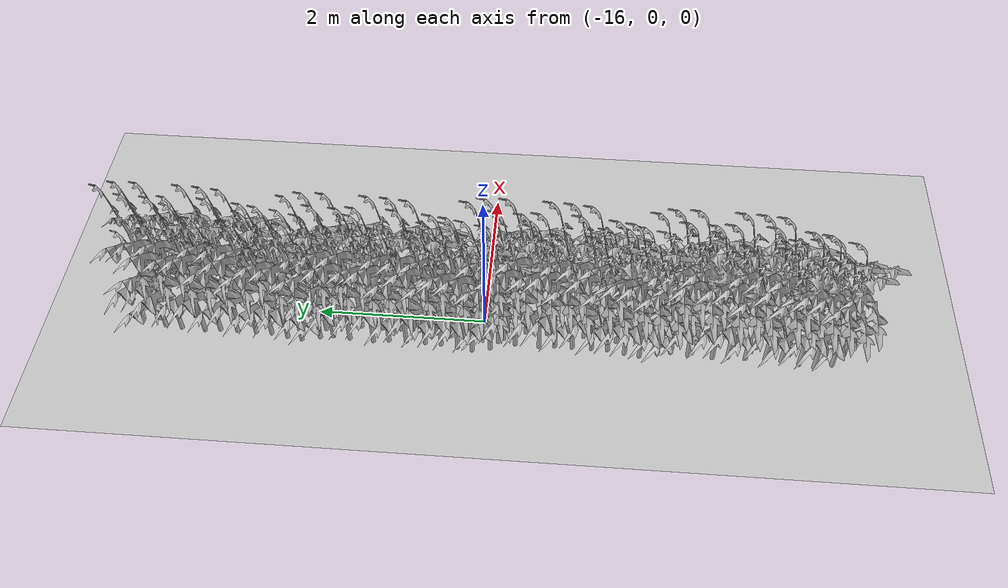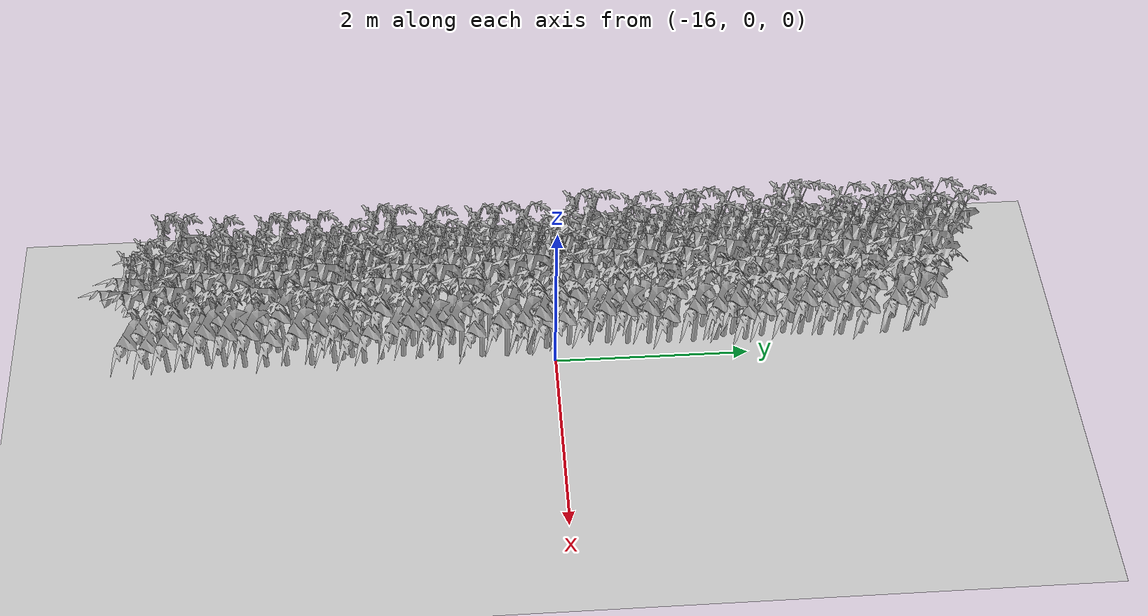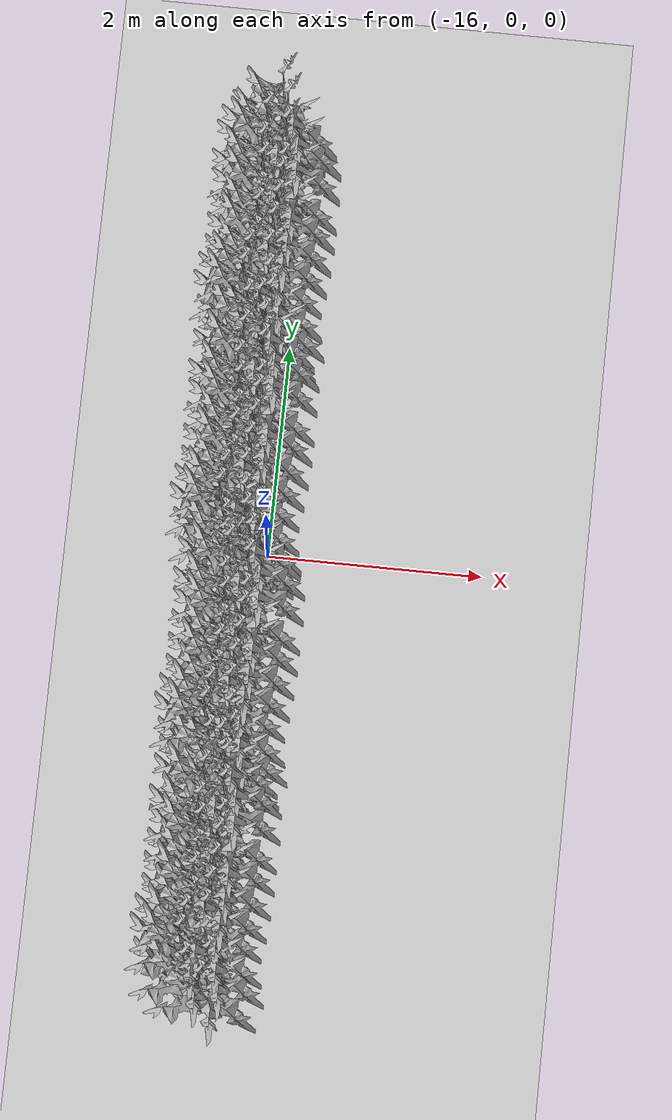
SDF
<sdf version="1.6">
 <world name="default">
  <model name="ground_plane">
   <static>1</static>
   <link name="link">
    <collision name="collision">
     <geometry><plane><normal>0 0 1</normal><size>100 100</size></plane></geometry>
     <surface>
      <contact><collide_bitmask>65535</collide_bitmask></contact>
      <friction><ode><mu>100</mu><mu2>50</mu2></ode></friction>
     </surface>
    </collision>
    <visual name="visual">
     <cast_shadows>0</cast_shadows>
     <geometry><plane><normal>0 0 1</normal><size>100 100</size></plane></geometry>
     <material>
      <script><uri>file://media/materials/scripts/gazebo.material</uri><name>Gazebo/Grey</name></script>
     </material>
    </visual>
   </link>
  </model>
  <model name="MIddle_Plant_3_0">
   <model name="MIddle_Plant_1">
    <model name="tomato_plant_big">
     <static>1</static>
     <link name="link">
      <collision name="collision">
       <pose>0 0 0 1.5708 -0 0</pose>
       <geometry><mesh><scale>0.5 0.6 0.5</scale><uri>model://stick/meshes/stick.dae</uri></mesh></geometry>
      </collision>
      <visual name="visual">
       <geometry>
        <mesh><scale>5e-06 5e-06 7e-06</scale><uri>model://tomato_plant_big/meshes/tomato-plant.dae</uri></mesh>
       </geometry>
      </visual>
     </link>
     <pose>-0.144318 -0.693607 -0 0 -0 0</pose>
    </model>
    <model name="tomato_plant_big_0">
     <static>1</static>
     <link name="link">
      <collision name="collision">
       <pose>0 0 0 1.5708 -0 0</pose>
       <geometry><mesh><scale>0.5 0.6 0.5</scale><uri>model://stick/meshes/stick.dae</uri></mesh></geometry>
      </collision>
      <visual name="visual">
       <geometry>
        <mesh><scale>5e-06 5e-06 7e-06</scale><uri>model://tomato_plant_big/meshes/tomato-plant.dae</uri></mesh>
       </geometry>
      </visual>
     </link>
     <pose>-0.11784 -0.519827 0 0 -0 0</pose>
    </model>
    <model name="tomato_plant_big_1">
     <static>1</static>
     <link name="link">
      <collision name="collision">
       <pose>0 0 0 1.5708 -0 0</pose>
       <geometry><mesh><scale>0.5 0.6 0.5</scale><uri>model://stick/meshes/stick.dae</uri></mesh></geometry>
      </collision>
      <visual name="visual">
       <geometry>
        <mesh><scale>5e-06 5e-06 7e-06</scale><uri>model://tomato_plant_big/meshes/tomato-plant.dae</uri></mesh>
       </geometry>
      </visual>
     </link>
     <pose>0.073755 -0.247584 0 0 -0 0</pose>
    </model>
    <model name="tomato_plant_big_10">
     <static>1</static>
     <link name="link">
      <collision name="collision">
       <pose>0 0 0 1.5708 -0 0</pose>
       <geometry><mesh><scale>0.5 0.6 0.5</scale><uri>model://stick/meshes/stick.dae</uri></mesh></geometry>
      </collision>
      <visual name="visual">
       <geometry>
        <mesh><scale>5e-06 5e-06 7e-06</scale><uri>model://tomato_plant_big/meshes/tomato-plant.dae</uri></mesh>
       </geometry>
      </visual>
     </link>
     <pose>0.037052 1.07094 0 0 -0 0</pose>
    </model>
    <model name="tomato_plant_big_2">
     <static>1</static>
     <link name="link">
      <collision name="collision">
       <pose>0 0 0 1.5708 -0 0</pose>
       <geometry><mesh><scale>0.5 0.6 0.5</scale><uri>model://stick/meshes/stick.dae</uri></mesh></geometry>
      </collision>
      <visual name="visual">
       <geometry>
        <mesh><scale>5e-06 5e-06 7e-06</scale><uri>model://tomato_plant_big/meshes/tomato-plant.dae</uri></mesh>
       </geometry>
      </visual>
     </link>
     <pose>-0.076926 -0.131165 0 0 -0 0</pose>
    </model>
    <model name="tomato_plant_big_3">
     <static>1</static>
     <link name="link">
      <collision name="collision">
       <pose>0 0 0 1.5708 -0 0</pose>
       <geometry><mesh><scale>0.5 0.6 0.5</scale><uri>model://stick/meshes/stick.dae</uri></mesh></geometry>
      </collision>
      <visual name="visual">
       <geometry>
        <mesh><scale>5e-06 5e-06 7e-06</scale><uri>model://tomato_plant_big/meshes/tomato-plant.dae</uri></mesh>
       </geometry>
      </visual>
     </link>
     <pose>0.093714 -0.038386 0 0 -0 0</pose>
    </model>
    <model name="tomato_plant_big_4">
     <static>1</static>
     <link name="link">
      <collision name="collision">
       <pose>0 0 0 1.5708 -0 0</pose>
       <geometry><mesh><scale>0.5 0.6 0.5</scale><uri>model://stick/meshes/stick.dae</uri></mesh></geometry>
      </collision>
      <visual name="visual">
       <geometry>
        <mesh><scale>5e-06 5e-06 7e-06</scale><uri>model://tomato_plant_big/meshes/tomato-plant.dae</uri></mesh>
       </geometry>
      </visual>
     </link>
     <pose>0.103117 0.184356 0 0 -0 0</pose>
    </model>
    <model name="tomato_plant_big_5">
     <static>1</static>
     <link name="link">
      <collision name="collision">
       <pose>0 0 0 1.5708 -0 0</pose>
       <geometry><mesh><scale>0.5 0.6 0.5</scale><uri>model://stick/meshes/stick.dae</uri></mesh></geometry>
      </collision>
      <visual name="visual">
       <geometry>
        <mesh><scale>5e-06 5e-06 7e-06</scale><uri>model://tomato_plant_big/meshes/tomato-plant.dae</uri></mesh>
       </geometry>
      </visual>
     </link>
     <pose>-0.074883 0.301479 0 0 -0 0</pose>
    </model>
    <model name="tomato_plant_big_6">
     <static>1</static>
     <link name="link">
      <collision name="collision">
       <pose>0 0 0 1.5708 -0 0</pose>
       <geometry><mesh><scale>0.5 0.6 0.5</scale><uri>model://stick/meshes/stick.dae</uri></mesh></geometry>
      </collision>
      <visual name="visual">
       <geometry>
        <mesh><scale>5e-06 5e-06 7e-06</scale><uri>model://tomato_plant_big/meshes/tomato-plant.dae</uri></mesh>
       </geometry>
      </visual>
     </link>
     <pose>-0.096921 0.484007 0 0 -0 0</pose>
    </model>
    <model name="tomato_plant_big_7">
     <static>1</static>
     <link name="link">
      <collision name="collision">
       <pose>0 0 0 1.5708 -0 0</pose>
       <geometry><mesh><scale>0.5 0.6 0.5</scale><uri>model://stick/meshes/stick.dae</uri></mesh></geometry>
      </collision>
      <visual name="visual">
       <geometry>
        <mesh><scale>5e-06 5e-06 7e-06</scale><uri>model://tomato_plant_big/meshes/tomato-plant.dae</uri></mesh>
       </geometry>
      </visual>
     </link>
     <pose>0.107491 0.653976 0 0 -0 0</pose>
    </model>
    <model name="tomato_plant_big_8">
     <static>1</static>
     <link name="link">
      <collision name="collision">
       <pose>0 0 0 1.5708 -0 0</pose>
       <geometry><mesh><scale>0.5 0.6 0.5</scale><uri>model://stick/meshes/stick.dae</uri></mesh></geometry>
      </collision>
      <visual name="visual">
       <geometry>
        <mesh><scale>5e-06 5e-06 7e-06</scale><uri>model://tomato_plant_big/meshes/tomato-plant.dae</uri></mesh>
       </geometry>
      </visual>
     </link>
     <pose>-0.07985 0.768549 0 0 -0 0</pose>
    </model>
    <model name="tomato_plant_big_9">
     <static>1</static>
     <link name="link">
      <collision name="collision">
       <pose>0 0 0 1.5708 -0 0</pose>
       <geometry><mesh><scale>0.5 0.6 0.5</scale><uri>model://stick/meshes/stick.dae</uri></mesh></geometry>
      </collision>
      <visual name="visual">
       <geometry>
        <mesh><scale>5e-06 5e-06 7e-06</scale><uri>model://tomato_plant_big/meshes/tomato-plant.dae</uri></mesh>
       </geometry>
      </visual>
     </link>
     <pose>0.098361 0.890852 0 0 -0 0</pose>
    </model>
    <model name="tomato_plant_medium">
     <static>1</static>
     <link name="link">
      <collision name="collision">
       <pose>0 0 0 1.5708 -0 0</pose>
       <geometry><mesh><scale>0.5 0.5 0.5</scale><uri>model://stick/meshes/stick.dae</uri></mesh></geometry>
      </collision>
      <visual name="visual">
       <geometry>
        <mesh><scale>5e-06 5e-06 6e-06</scale><uri>model://tomato_plant_medium/meshes/tomato-plant.dae</uri></mesh>
       </geometry>
      </visual>
     </link>
     <pose>0.056913 -1.05328 0 0 -0 0</pose>
    </model>
    <model name="tomato_plant_medium_0">
     <static>1</static>
     <link name="link">
      <collision name="collision">
       <pose>0 0 0 1.5708 -0 0</pose>
       <geometry><mesh><scale>0.5 0.5 0.5</scale><uri>model://stick/meshes/stick.dae</uri></mesh></geometry>
      </collision>
      <visual name="visual">
       <geometry>
        <mesh><scale>5e-06 5e-06 6e-06</scale><uri>model://tomato_plant_medium/meshes/tomato-plant.dae</uri></mesh>
       </geometry>
      </visual>
     </link>
     <pose>-0.092719 -0.905729 0 0 -0 0</pose>
    </model>
    <model name="tomato_plant_medium_1">
     <static>1</static>
     <link name="link">
      <collision name="collision">
       <pose>0 0 0 1.5708 -0 0</pose>
       <geometry><mesh><scale>0.5 0.5 0.5</scale><uri>model://stick/meshes/stick.dae</uri></mesh></geometry>
      </collision>
      <visual name="visual">
       <geometry>
        <mesh><scale>5e-06 5e-06 6e-06</scale><uri>model://tomato_plant_medium/meshes/tomato-plant.dae</uri></mesh>
       </geometry>
      </visual>
     </link>
     <pose>0.108962 -0.829637 0 0 -0 0</pose>
    </model>
    <model name="tomato_plant_medium_2">
     <static>1</static>
     <link name="link">
      <collision name="collision">
       <pose>0 0 0 1.5708 -0 0</pose>
       <geometry><mesh><scale>0.5 0.5 0.5</scale><uri>model://stick/meshes/stick.dae</uri></mesh></geometry>
      </collision>
      <visual name="visual">
       <geometry>
        <mesh><scale>5e-06 5e-06 6e-06</scale><uri>model://tomato_plant_medium/meshes/tomato-plant.dae</uri></mesh>
       </geometry>
      </visual>
     </link>
     <pose>0.071216 -0.652507 0 0 -0 0</pose>
    </model>
    <model name="tomato_plant_medium_3">
     <static>1</static>
     <link name="link">
      <collision name="collision">
       <pose>0 0 0 1.5708 -0 0</pose>
       <geometry><mesh><scale>0.5 0.5 0.5</scale><uri>model://stick/meshes/stick.dae</uri></mesh></geometry>
      </collision>
      <visual name="visual">
       <geometry>
        <mesh><scale>5e-06 5e-06 6e-06</scale><uri>model://tomato_plant_medium/meshes/tomato-plant.dae</uri></mesh>
       </geometry>
      </visual>
     </link>
     <pose>0.047335 -0.423046 0 0 -0 0</pose>
    </model>
    <model name="tomato_plant_medium_4">
     <static>1</static>
     <link name="link">
      <collision name="collision">
       <pose>0 0 0 1.5708 -0 0</pose>
       <geometry><mesh><scale>0.5 0.5 0.5</scale><uri>model://stick/meshes/stick.dae</uri></mesh></geometry>
      </collision>
      <visual name="visual">
       <geometry>
        <mesh><scale>5e-06 5e-06 6e-06</scale><uri>model://tomato_plant_medium/meshes/tomato-plant.dae</uri></mesh>
       </geometry>
      </visual>
     </link>
     <pose>-0.081012 -0.320324 0 0 -0 0</pose>
    </model>
    <model name="tomato_plant_medium_5">
     <static>1</static>
     <link name="link">
      <collision name="collision">
       <pose>0 0 0 1.5708 -0 0</pose>
       <geometry><mesh><scale>0.5 0.5 0.5</scale><uri>model://stick/meshes/stick.dae</uri></mesh></geometry>
      </collision>
      <visual name="visual">
       <geometry>
        <mesh><scale>5e-06 5e-06 6e-06</scale><uri>model://tomato_plant_medium/meshes/tomato-plant.dae</uri></mesh>
       </geometry>
      </visual>
     </link>
     <pose>-0.07452 0.095988 0 0 -0 0</pose>
    </model>
    <model name="tomato_plant_medium_6">
     <static>1</static>
     <link name="link">
      <collision name="collision">
       <pose>0 0 0 1.5708 -0 0</pose>
       <geometry><mesh><scale>0.5 0.5 0.5</scale><uri>model://stick/meshes/stick.dae</uri></mesh></geometry>
      </collision>
      <visual name="visual">
       <geometry>
        <mesh><scale>5e-06 5e-06 6e-06</scale><uri>model://tomato_plant_medium/meshes/tomato-plant.dae</uri></mesh>
       </geometry>
      </visual>
     </link>
     <pose>0.101424 0.395443 0 0 -0 0</pose>
    </model>
    <model name="tomato_plant_small">
     <static>1</static>
     <link name="link">
      <collision name="collision">
       <pose>0 0 0 1.5708 -0 0</pose>
       <geometry><mesh><scale>0.5 0.45 0.5</scale><uri>model://stick/meshes/stick.dae</uri></mesh></geometry>
      </collision>
      <visual name="visual">
       <geometry>
        <mesh><scale>5e-06 5e-06 5e-06</scale><uri>model://tomato_plant_small/meshes/tomato-plant.dae</uri></mesh>
       </geometry>
      </visual>
     </link>
     <pose>-0.060351 0.969512 0 0 -0 0</pose>
    </model>
    <static>0</static>
    <pose>0.040757 1.77284 0 0 -0 0</pose>
   </model>
   <model name="MIddle_Plant_2">
    <model name="MIddle_Plant_1">
     <model name="tomato_plant_big">
      <static>1</static>
      <link name="link">
       <collision name="collision">
        <pose>0 0 0 1.5708 -0 0</pose>
        <geometry><mesh><scale>0.5 0.6 0.5</scale><uri>model://stick/meshes/stick.dae</uri></mesh></geometry>
       </collision>
       <visual name="visual">
        <geometry>
         <mesh><scale>5e-06 5e-06 7e-06</scale><uri>model://tomato_plant_big/meshes/tomato-plant.dae</uri></mesh>
        </geometry>
       </visual>
      </link>
      <pose>-0.144318 -0.693607 -0 0 -0 0</pose>
     </model>
     <model name="tomato_plant_big_0">
      <static>1</static>
      <link name="link">
       <collision name="collision">
        <pose>0 0 0 1.5708 -0 0</pose>
        <geometry><mesh><scale>0.5 0.6 0.5</scale><uri>model://stick/meshes/stick.dae</uri></mesh></geometry>
       </collision>
       <visual name="visual">
        <geometry>
         <mesh><scale>5e-06 5e-06 7e-06</scale><uri>model://tomato_plant_big/meshes/tomato-plant.dae</uri></mesh>
        </geometry>
       </visual>
      </link>
      <pose>-0.11784 -0.519827 0 0 -0 0</pose>
     </model>
     <model name="tomato_plant_big_1">
      <static>1</static>
      <link name="link">
       <collision name="collision">
        <pose>0 0 0 1.5708 -0 0</pose>
        <geometry><mesh><scale>0.5 0.6 0.5</scale><uri>model://stick/meshes/stick.dae</uri></mesh></geometry>
       </collision>
       <visual name="visual">
        <geometry>
         <mesh><scale>5e-06 5e-06 7e-06</scale><uri>model://tomato_plant_big/meshes/tomato-plant.dae</uri></mesh>
        </geometry>
       </visual>
      </link>
      <pose>0.073755 -0.247584 0 0 -0 0</pose>
     </model>
     <model name="tomato_plant_big_10">
      <static>1</static>
      <link name="link">
       <collision name="collision">
        <pose>0 0 0 1.5708 -0 0</pose>
        <geometry><mesh><scale>0.5 0.6 0.5</scale><uri>model://stick/meshes/stick.dae</uri></mesh></geometry>
       </collision>
       <visual name="visual">
        <geometry>
         <mesh><scale>5e-06 5e-06 7e-06</scale><uri>model://tomato_plant_big/meshes/tomato-plant.dae</uri></mesh>
        </geometry>
       </visual>
      </link>
      <pose>0.037052 1.07094 0 0 -0 0</pose>
     </model>
     <model name="tomato_plant_big_2">
      <static>1</static>
      <link name="link">
       <collision name="collision">
        <pose>0 0 0 1.5708 -0 0</pose>
        <geometry><mesh><scale>0.5 0.6 0.5</scale><uri>model://stick/meshes/stick.dae</uri></mesh></geometry>
       </collision>
       <visual name="visual">
        <geometry>
         <mesh><scale>5e-06 5e-06 7e-06</scale><uri>model://tomato_plant_big/meshes/tomato-plant.dae</uri></mesh>
        </geometry>
       </visual>
      </link>
      <pose>-0.076926 -0.131165 0 0 -0 0</pose>
     </model>
     <model name="tomato_plant_big_3">
      <static>1</static>
      <link name="link">
       <collision name="collision">
        <pose>0 0 0 1.5708 -0 0</pose>
        <geometry><mesh><scale>0.5 0.6 0.5</scale><uri>model://stick/meshes/stick.dae</uri></mesh></geometry>
       </collision>
       <visual name="visual">
        <geometry>
         <mesh><scale>5e-06 5e-06 7e-06</scale><uri>model://tomato_plant_big/meshes/tomato-plant.dae</uri></mesh>
        </geometry>
       </visual>
      </link>
      <pose>0.093714 -0.038386 0 0 -0 0</pose>
     </model>
     <model name="tomato_plant_big_4">
      <static>1</static>
      <link name="link">
       <collision name="collision">
        <pose>0 0 0 1.5708 -0 0</pose>
        <geometry><mesh><scale>0.5 0.6 0.5</scale><uri>model://stick/meshes/stick.dae</uri></mesh></geometry>
       </collision>
       <visual name="visual">
        <geometry>
         <mesh><scale>5e-06 5e-06 7e-06</scale><uri>model://tomato_plant_big/meshes/tomato-plant.dae</uri></mesh>
        </geometry>
       </visual>
      </link>
      <pose>0.103117 0.184356 0 0 -0 0</pose>
     </model>
     <model name="tomato_plant_big_5">
      <static>1</static>
      <link name="link">
       <collision name="collision">
        <pose>0 0 0 1.5708 -0 0</pose>
        <geometry><mesh><scale>0.5 0.6 0.5</scale><uri>model://stick/meshes/stick.dae</uri></mesh></geometry>
       </collision>
       <visual name="visual">
        <geometry>
         <mesh><scale>5e-06 5e-06 7e-06</scale><uri>model://tomato_plant_big/meshes/tomato-plant.dae</uri></mesh>
        </geometry>
       </visual>
      </link>
      <pose>-0.074883 0.301479 0 0 -0 0</pose>
     </model>
     <model name="tomato_plant_big_6">
      <static>1</static>
      <link name="link">
       <collision name="collision">
        <pose>0 0 0 1.5708 -0 0</pose>
        <geometry><mesh><scale>0.5 0.6 0.5</scale><uri>model://stick/meshes/stick.dae</uri></mesh></geometry>
       </collision>
       <visual name="visual">
        <geometry>
         <mesh><scale>5e-06 5e-06 7e-06</scale><uri>model://tomato_plant_big/meshes/tomato-plant.dae</uri></mesh>
        </geometry>
       </visual>
      </link>
      <pose>-0.096921 0.484007 0 0 -0 0</pose>
     </model>
     <model name="tomato_plant_big_7">
      <static>1</static>
      <link name="link">
       <collision name="collision">
        <pose>0 0 0 1.5708 -0 0</pose>
        <geometry><mesh><scale>0.5 0.6 0.5</scale><uri>model://stick/meshes/stick.dae</uri></mesh></geometry>
       </collision>
       <visual name="visual">
        <geometry>
         <mesh><scale>5e-06 5e-06 7e-06</scale><uri>model://tomato_plant_big/meshes/tomato-plant.dae</uri></mesh>
        </geometry>
       </visual>
      </link>
      <pose>0.107491 0.653976 0 0 -0 0</pose>
     </model>
     <model name="tomato_plant_big_8">
      <static>1</static>
      <link name="link">
       <collision name="collision">
        <pose>0 0 0 1.5708 -0 0</pose>
        <geometry><mesh><scale>0.5 0.6 0.5</scale><uri>model://stick/meshes/stick.dae</uri></mesh></geometry>
       </collision>
       <visual name="visual">
        <geometry>
         <mesh><scale>5e-06 5e-06 7e-06</scale><uri>model://tomato_plant_big/meshes/tomato-plant.dae</uri></mesh>
        </geometry>
       </visual>
      </link>
      <pose>-0.07985 0.768549 0 0 -0 0</pose>
     </model>
     <model name="tomato_plant_big_9">
      <static>1</static>
      <link name="link">
       <collision name="collision">
        <pose>0 0 0 1.5708 -0 0</pose>
        <geometry><mesh><scale>0.5 0.6 0.5</scale><uri>model://stick/meshes/stick.dae</uri></mesh></geometry>
       </collision>
       <visual name="visual">
        <geometry>
         <mesh><scale>5e-06 5e-06 7e-06</scale><uri>model://tomato_plant_big/meshes/tomato-plant.dae</uri></mesh>
        </geometry>
       </visual>
      </link>
      <pose>0.098361 0.890852 0 0 -0 0</pose>
     </model>
     <model name="tomato_plant_medium">
      <static>1</static>
      <link name="link">
       <collision name="collision">
        <pose>0 0 0 1.5708 -0 0</pose>
        <geometry><mesh><scale>0.5 0.5 0.5</scale><uri>model://stick/meshes/stick.dae</uri></mesh></geometry>
       </collision>
       <visual name="visual">
        <geometry>
         <mesh><scale>5e-06 5e-06 6e-06</scale><uri>model://tomato_plant_medium/meshes/tomato-plant.dae</uri></mesh>
        </geometry>
       </visual>
      </link>
      <pose>0.056913 -1.05328 0 0 -0 0</pose>
     </model>
     <model name="tomato_plant_medium_0">
      <static>1</static>
      <link name="link">
       <collision name="collision">
        <pose>0 0 0 1.5708 -0 0</pose>
        <geometry><mesh><scale>0.5 0.5 0.5</scale><uri>model://stick/meshes/stick.dae</uri></mesh></geometry>
       </collision>
       <visual name="visual">
        <geometry>
         <mesh><scale>5e-06 5e-06 6e-06</scale><uri>model://tomato_plant_medium/meshes/tomato-plant.dae</uri></mesh>
        </geometry>
       </visual>
      </link>
      <pose>-0.092719 -0.905729 0 0 -0 0</pose>
     </model>
     <model name="tomato_plant_medium_1">
      <static>1</static>
      <link name="link">
       <collision name="collision">
        <pose>0 0 0 1.5708 -0 0</pose>
        <geometry><mesh><scale>0.5 0.5 0.5</scale><uri>model://stick/meshes/stick.dae</uri></mesh></geometry>
       </collision>
       <visual name="visual">
        <geometry>
         <mesh><scale>5e-06 5e-06 6e-06</scale><uri>model://tomato_plant_medium/meshes/tomato-plant.dae</uri></mesh>
        </geometry>
       </visual>
      </link>
      <pose>0.108962 -0.829637 0 0 -0 0</pose>
     </model>
     <model name="tomato_plant_medium_2">
      <static>1</static>
      <link name="link">
       <collision name="collision">
        <pose>0 0 0 1.5708 -0 0</pose>
        <geometry><mesh><scale>0.5 0.5 0.5</scale><uri>model://stick/meshes/stick.dae</uri></mesh></geometry>
       </collision>
       <visual name="visual">
        <geometry>
         <mesh><scale>5e-06 5e-06 6e-06</scale><uri>model://tomato_plant_medium/meshes/tomato-plant.dae</uri></mesh>
        </geometry>
       </visual>
      </link>
      <pose>0.071216 -0.652507 0 0 -0 0</pose>
     </model>
     <model name="tomato_plant_medium_3">
      <static>1</static>
      <link name="link">
       <collision name="collision">
        <pose>0 0 0 1.5708 -0 0</pose>
        <geometry><mesh><scale>0.5 0.5 0.5</scale><uri>model://stick/meshes/stick.dae</uri></mesh></geometry>
       </collision>
       <visual name="visual">
        <geometry>
         <mesh><scale>5e-06 5e-06 6e-06</scale><uri>model://tomato_plant_medium/meshes/tomato-plant.dae</uri></mesh>
        </geometry>
       </visual>
      </link>
      <pose>0.047335 -0.423046 0 0 -0 0</pose>
     </model>
     <model name="tomato_plant_medium_4">
      <static>1</static>
      <link name="link">
       <collision name="collision">
        <pose>0 0 0 1.5708 -0 0</pose>
        <geometry><mesh><scale>0.5 0.5 0.5</scale><uri>model://stick/meshes/stick.dae</uri></mesh></geometry>
       </collision>
       <visual name="visual">
        <geometry>
         <mesh><scale>5e-06 5e-06 6e-06</scale><uri>model://tomato_plant_medium/meshes/tomato-plant.dae</uri></mesh>
        </geometry>
       </visual>
      </link>
      <pose>-0.081012 -0.320324 0 0 -0 0</pose>
     </model>
     <model name="tomato_plant_medium_5">
      <static>1</static>
      <link name="link">
       <collision name="collision">
        <pose>0 0 0 1.5708 -0 0</pose>
        <geometry><mesh><scale>0.5 0.5 0.5</scale><uri>model://stick/meshes/stick.dae</uri></mesh></geometry>
       </collision>
       <visual name="visual">
        <geometry>
         <mesh><scale>5e-06 5e-06 6e-06</scale><uri>model://tomato_plant_medium/meshes/tomato-plant.dae</uri></mesh>
        </geometry>
       </visual>
      </link>
      <pose>-0.07452 0.095988 0 0 -0 0</pose>
     </model>
     <model name="tomato_plant_medium_6">
      <static>1</static>
      <link name="link">
       <collision name="collision">
        <pose>0 0 0 1.5708 -0 0</pose>
        <geometry><mesh><scale>0.5 0.5 0.5</scale><uri>model://stick/meshes/stick.dae</uri></mesh></geometry>
       </collision>
       <visual name="visual">
        <geometry>
         <mesh><scale>5e-06 5e-06 6e-06</scale><uri>model://tomato_plant_medium/meshes/tomato-plant.dae</uri></mesh>
        </geometry>
       </visual>
      </link>
      <pose>0.101424 0.395443 0 0 -0 0</pose>
     </model>
     <model name="tomato_plant_small">
      <static>1</static>
      <link name="link">
       <collision name="collision">
        <pose>0 0 0 1.5708 -0 0</pose>
        <geometry><mesh><scale>0.5 0.45 0.5</scale><uri>model://stick/meshes/stick.dae</uri></mesh></geometry>
       </collision>
       <visual name="visual">
        <geometry>
         <mesh><scale>5e-06 5e-06 5e-06</scale><uri>model://tomato_plant_small/meshes/tomato-plant.dae</uri></mesh>
        </geometry>
       </visual>
      </link>
      <pose>-0.060351 0.969512 0 0 -0 0</pose>
     </model>
     <static>0</static>
     <pose>0.763113 0.028917 0 0 -0 0</pose>
    </model>
    <model name="tomato_plant_big">
     <static>1</static>
     <link name="link">
      <collision name="collision">
       <pose>0 0 0 1.5708 -0 0</pose>
       <geometry><mesh><scale>0.5 0.6 0.5</scale><uri>model://stick/meshes/stick.dae</uri></mesh></geometry>
      </collision>
      <visual name="visual">
       <geometry>
        <mesh><scale>5e-06 5e-06 7e-06</scale><uri>model://tomato_plant_big/meshes/tomato-plant.dae</uri></mesh>
       </geometry>
      </visual>
     </link>
     <pose>0.613724 -2.69399 -0 0 -0 0</pose>
    </model>
    <model name="tomato_plant_big_0">
     <static>1</static>
     <link name="link">
      <collision name="collision">
       <pose>0 0 0 1.5708 -0 0</pose>
       <geometry><mesh><scale>0.5 0.6 0.5</scale><uri>model://stick/meshes/stick.dae</uri></mesh></geometry>
      </collision>
      <visual name="visual">
       <geometry>
        <mesh><scale>5e-06 5e-06 7e-06</scale><uri>model://tomato_plant_big/meshes/tomato-plant.dae</uri></mesh>
       </geometry>
      </visual>
     </link>
     <pose>0.640202 -2.52021 0 0 -0 0</pose>
    </model>
    <model name="tomato_plant_big_1">
     <static>1</static>
     <link name="link">
      <collision name="collision">
       <pose>0 0 0 1.5708 -0 0</pose>
       <geometry><mesh><scale>0.5 0.6 0.5</scale><uri>model://stick/meshes/stick.dae</uri></mesh></geometry>
      </collision>
      <visual name="visual">
       <geometry>
        <mesh><scale>5e-06 5e-06 7e-06</scale><uri>model://tomato_plant_big/meshes/tomato-plant.dae</uri></mesh>
       </geometry>
      </visual>
     </link>
     <pose>0.831797 -2.24797 0 0 -0 0</pose>
    </model>
    <model name="tomato_plant_big_10">
     <static>1</static>
     <link name="link">
      <collision name="collision">
       <pose>0 0 0 1.5708 -0 0</pose>
       <geometry><mesh><scale>0.5 0.6 0.5</scale><uri>model://stick/meshes/stick.dae</uri></mesh></geometry>
      </collision>
      <visual name="visual">
       <geometry>
        <mesh><scale>5e-06 5e-06 7e-06</scale><uri>model://tomato_plant_big/meshes/tomato-plant.dae</uri></mesh>
       </geometry>
      </visual>
     </link>
     <pose>0.795094 -0.929446 0 0 -0 0</pose>
    </model>
    <model name="tomato_plant_big_2">
     <static>1</static>
     <link name="link">
      <collision name="collision">
       <pose>0 0 0 1.5708 -0 0</pose>
       <geometry><mesh><scale>0.5 0.6 0.5</scale><uri>model://stick/meshes/stick.dae</uri></mesh></geometry>
      </collision>
      <visual name="visual">
       <geometry>
        <mesh><scale>5e-06 5e-06 7e-06</scale><uri>model://tomato_plant_big/meshes/tomato-plant.dae</uri></mesh>
       </geometry>
      </visual>
     </link>
     <pose>0.681116 -2.13155 0 0 -0 0</pose>
    </model>
    <model name="tomato_plant_big_3">
     <static>1</static>
     <link name="link">
      <collision name="collision">
       <pose>0 0 0 1.5708 -0 0</pose>
       <geometry><mesh><scale>0.5 0.6 0.5</scale><uri>model://stick/meshes/stick.dae</uri></mesh></geometry>
      </collision>
      <visual name="visual">
       <geometry>
        <mesh><scale>5e-06 5e-06 7e-06</scale><uri>model://tomato_plant_big/meshes/tomato-plant.dae</uri></mesh>
       </geometry>
      </visual>
     </link>
     <pose>0.851755 -2.03877 0 0 -0 0</pose>
    </model>
    <model name="tomato_plant_big_4">
     <static>1</static>
     <link name="link">
      <collision name="collision">
       <pose>0 0 0 1.5708 -0 0</pose>
       <geometry><mesh><scale>0.5 0.6 0.5</scale><uri>model://stick/meshes/stick.dae</uri></mesh></geometry>
      </collision>
      <visual name="visual">
       <geometry>
        <mesh><scale>5e-06 5e-06 7e-06</scale><uri>model://tomato_plant_big/meshes/tomato-plant.dae</uri></mesh>
       </geometry>
      </visual>
     </link>
     <pose>0.861158 -1.81603 0 0 -0 0</pose>
    </model>
    <model name="tomato_plant_big_5">
     <static>1</static>
     <link name="link">
      <collision name="collision">
       <pose>0 0 0 1.5708 -0 0</pose>
       <geometry><mesh><scale>0.5 0.6 0.5</scale><uri>model://stick/meshes/stick.dae</uri></mesh></geometry>
      </collision>
      <visual name="visual">
       <geometry>
        <mesh><scale>5e-06 5e-06 7e-06</scale><uri>model://tomato_plant_big/meshes/tomato-plant.dae</uri></mesh>
       </geometry>
      </visual>
     </link>
     <pose>0.683158 -1.69891 0 0 -0 0</pose>
    </model>
    <model name="tomato_plant_big_6">
     <static>1</static>
     <link name="link">
      <collision name="collision">
       <pose>0 0 0 1.5708 -0 0</pose>
       <geometry><mesh><scale>0.5 0.6 0.5</scale><uri>model://stick/meshes/stick.dae</uri></mesh></geometry>
      </collision>
      <visual name="visual">
       <geometry>
        <mesh><scale>5e-06 5e-06 7e-06</scale><uri>model://tomato_plant_big/meshes/tomato-plant.dae</uri></mesh>
       </geometry>
      </visual>
     </link>
     <pose>0.66112 -1.51638 0 0 -0 0</pose>
    </model>
    <model name="tomato_plant_big_7">
     <static>1</static>
     <link name="link">
      <collision name="collision">
       <pose>0 0 0 1.5708 -0 0</pose>
       <geometry><mesh><scale>0.5 0.6 0.5</scale><uri>model://stick/meshes/stick.dae</uri></mesh></geometry>
      </collision>
      <visual name="visual">
       <geometry>
        <mesh><scale>5e-06 5e-06 7e-06</scale><uri>model://tomato_plant_big/meshes/tomato-plant.dae</uri></mesh>
       </geometry>
      </visual>
     </link>
     <pose>0.865532 -1.34641 0 0 -0 0</pose>
    </model>
    <model name="tomato_plant_big_8">
     <static>1</static>
     <link name="link">
      <collision name="collision">
       <pose>0 0 0 1.5708 -0 0</pose>
       <geometry><mesh><scale>0.5 0.6 0.5</scale><uri>model://stick/meshes/stick.dae</uri></mesh></geometry>
      </collision>
      <visual name="visual">
       <geometry>
        <mesh><scale>5e-06 5e-06 7e-06</scale><uri>model://tomato_plant_big/meshes/tomato-plant.dae</uri></mesh>
       </geometry>
      </visual>
     </link>
     <pose>0.678192 -1.23184 0 0 -0 0</pose>
    </model>
    <model name="tomato_plant_big_9">
     <static>1</static>
     <link name="link">
      <collision name="collision">
       <pose>0 0 0 1.5708 -0 0</pose>
       <geometry><mesh><scale>0.5 0.6 0.5</scale><uri>model://stick/meshes/stick.dae</uri></mesh></geometry>
      </collision>
      <visual name="visual">
       <geometry>
        <mesh><scale>5e-06 5e-06 7e-06</scale><uri>model://tomato_plant_big/meshes/tomato-plant.dae</uri></mesh>
       </geometry>
      </visual>
     </link>
     <pose>0.856402 -1.10953 0 0 -0 0</pose>
    </model>
    <model name="tomato_plant_medium">
     <static>1</static>
     <link name="link">
      <collision name="collision">
       <pose>0 0 0 1.5708 -0 0</pose>
       <geometry><mesh><scale>0.5 0.5 0.5</scale><uri>model://stick/meshes/stick.dae</uri></mesh></geometry>
      </collision>
      <visual name="visual">
       <geometry>
        <mesh><scale>5e-06 5e-06 6e-06</scale><uri>model://tomato_plant_medium/meshes/tomato-plant.dae</uri></mesh>
       </geometry>
      </visual>
     </link>
     <pose>0.814955 -3.05367 0 0 -0 0</pose>
    </model>
    <model name="tomato_plant_medium_0">
     <static>1</static>
     <link name="link">
      <collision name="collision">
       <pose>0 0 0 1.5708 -0 0</pose>
       <geometry><mesh><scale>0.5 0.5 0.5</scale><uri>model://stick/meshes/stick.dae</uri></mesh></geometry>
      </collision>
      <visual name="visual">
       <geometry>
        <mesh><scale>5e-06 5e-06 6e-06</scale><uri>model://tomato_plant_medium/meshes/tomato-plant.dae</uri></mesh>
       </geometry>
      </visual>
     </link>
     <pose>0.665322 -2.90611 0 0 -0 0</pose>
    </model>
    <model name="tomato_plant_medium_1">
     <static>1</static>
     <link name="link">
      <collision name="collision">
       <pose>0 0 0 1.5708 -0 0</pose>
       <geometry><mesh><scale>0.5 0.5 0.5</scale><uri>model://stick/meshes/stick.dae</uri></mesh></geometry>
      </collision>
      <visual name="visual">
       <geometry>
        <mesh><scale>5e-06 5e-06 6e-06</scale><uri>model://tomato_plant_medium/meshes/tomato-plant.dae</uri></mesh>
       </geometry>
      </visual>
     </link>
     <pose>0.867004 -2.83002 0 0 -0 0</pose>
    </model>
    <model name="tomato_plant_medium_2">
     <static>1</static>
     <link name="link">
      <collision name="collision">
       <pose>0 0 0 1.5708 -0 0</pose>
       <geometry><mesh><scale>0.5 0.5 0.5</scale><uri>model://stick/meshes/stick.dae</uri></mesh></geometry>
      </collision>
      <visual name="visual">
       <geometry>
        <mesh><scale>5e-06 5e-06 6e-06</scale><uri>model://tomato_plant_medium/meshes/tomato-plant.dae</uri></mesh>
       </geometry>
      </visual>
     </link>
     <pose>0.829257 -2.65289 0 0 -0 0</pose>
    </model>
    <model name="tomato_plant_medium_3">
     <static>1</static>
     <link name="link">
      <collision name="collision">
       <pose>0 0 0 1.5708 -0 0</pose>
       <geometry><mesh><scale>0.5 0.5 0.5</scale><uri>model://stick/meshes/stick.dae</uri></mesh></geometry>
      </collision>
      <visual name="visual">
       <geometry>
        <mesh><scale>5e-06 5e-06 6e-06</scale><uri>model://tomato_plant_medium/meshes/tomato-plant.dae</uri></mesh>
       </geometry>
      </visual>
     </link>
     <pose>0.805376 -2.42343 0 0 -0 0</pose>
    </model>
    <model name="tomato_plant_medium_4">
     <static>1</static>
     <link name="link">
      <collision name="collision">
       <pose>0 0 0 1.5708 -0 0</pose>
       <geometry><mesh><scale>0.5 0.5 0.5</scale><uri>model://stick/meshes/stick.dae</uri></mesh></geometry>
      </collision>
      <visual name="visual">
       <geometry>
        <mesh><scale>5e-06 5e-06 6e-06</scale><uri>model://tomato_plant_medium/meshes/tomato-plant.dae</uri></mesh>
       </geometry>
      </visual>
     </link>
     <pose>0.67703 -2.32071 0 0 -0 0</pose>
    </model>
    <model name="tomato_plant_medium_5">
     <static>1</static>
     <link name="link">
      <collision name="collision">
       <pose>0 0 0 1.5708 -0 0</pose>
       <geometry><mesh><scale>0.5 0.5 0.5</scale><uri>model://stick/meshes/stick.dae</uri></mesh></geometry>
      </collision>
      <visual name="visual">
       <geometry>
        <mesh><scale>5e-06 5e-06 6e-06</scale><uri>model://tomato_plant_medium/meshes/tomato-plant.dae</uri></mesh>
       </geometry>
      </visual>
     </link>
     <pose>0.683522 -1.9044 0 0 -0 0</pose>
    </model>
    <model name="tomato_plant_medium_6">
     <static>1</static>
     <link name="link">
      <collision name="collision">
       <pose>0 0 0 1.5708 -0 0</pose>
       <geometry><mesh><scale>0.5 0.5 0.5</scale><uri>model://stick/meshes/stick.dae</uri></mesh></geometry>
      </collision>
      <visual name="visual">
       <geometry>
        <mesh><scale>5e-06 5e-06 6e-06</scale><uri>model://tomato_plant_medium/meshes/tomato-plant.dae</uri></mesh>
       </geometry>
      </visual>
     </link>
     <pose>0.859466 -1.60494 0 0 -0 0</pose>
    </model>
    <model name="tomato_plant_small">
     <static>1</static>
     <link name="link">
      <collision name="collision">
       <pose>0 0 0 1.5708 -0 0</pose>
       <geometry><mesh><scale>0.5 0.45 0.5</scale><uri>model://stick/meshes/stick.dae</uri></mesh></geometry>
      </collision>
      <visual name="visual">
       <geometry>
        <mesh><scale>5e-06 5e-06 5e-06</scale><uri>model://tomato_plant_small/meshes/tomato-plant.dae</uri></mesh>
       </geometry>
      </visual>
     </link>
     <pose>0.697691 -1.03087 0 0 -0 0</pose>
    </model>
    <static>0</static>
    <pose>-0.78485 5.73439 0 0 -0 0</pose>
   </model>
   <model name="tomato_plant_big">
    <static>1</static>
    <link name="link">
     <collision name="collision">
      <pose>0 0 0 1.5708 -0 0</pose>
      <geometry><mesh><scale>0.5 0.6 0.5</scale><uri>model://stick/meshes/stick.dae</uri></mesh></geometry>
     </collision>
     <visual name="visual">
      <geometry>
       <mesh><scale>5e-06 5e-06 7e-06</scale><uri>model://tomato_plant_big/meshes/tomato-plant.dae</uri></mesh>
      </geometry>
     </visual>
    </link>
    <pose>-0.108632 -0.950068 -0 0 -0 0</pose>
   </model>
   <model name="tomato_plant_big_0">
    <static>1</static>
    <link name="link">
     <collision name="collision">
      <pose>0 0 0 1.5708 -0 0</pose>
      <geometry><mesh><scale>0.5 0.6 0.5</scale><uri>model://stick/meshes/stick.dae</uri></mesh></geometry>
     </collision>
     <visual name="visual">
      <geometry>
       <mesh><scale>5e-06 5e-06 7e-06</scale><uri>model://tomato_plant_big/meshes/tomato-plant.dae</uri></mesh>
      </geometry>
     </visual>
    </link>
    <pose>-0.082154 -0.776288 0 0 -0 0</pose>
   </model>
   <model name="tomato_plant_big_1">
    <static>1</static>
    <link name="link">
     <collision name="collision">
      <pose>0 0 0 1.5708 -0 0</pose>
      <geometry><mesh><scale>0.5 0.6 0.5</scale><uri>model://stick/meshes/stick.dae</uri></mesh></geometry>
     </collision>
     <visual name="visual">
      <geometry>
       <mesh><scale>5e-06 5e-06 7e-06</scale><uri>model://tomato_plant_big/meshes/tomato-plant.dae</uri></mesh>
      </geometry>
     </visual>
    </link>
    <pose>0.109441 -0.504045 0 0 -0 0</pose>
   </model>
   <model name="tomato_plant_big_10">
    <static>1</static>
    <link name="link">
     <collision name="collision">
      <pose>0 0 0 1.5708 -0 0</pose>
      <geometry><mesh><scale>0.5 0.6 0.5</scale><uri>model://stick/meshes/stick.dae</uri></mesh></geometry>
     </collision>
     <visual name="visual">
      <geometry>
       <mesh><scale>5e-06 5e-06 7e-06</scale><uri>model://tomato_plant_big/meshes/tomato-plant.dae</uri></mesh>
      </geometry>
     </visual>
    </link>
    <pose>0.072738 0.814477 0 0 -0 0</pose>
   </model>
   <model name="tomato_plant_big_2">
    <static>1</static>
    <link name="link">
     <collision name="collision">
      <pose>0 0 0 1.5708 -0 0</pose>
      <geometry><mesh><scale>0.5 0.6 0.5</scale><uri>model://stick/meshes/stick.dae</uri></mesh></geometry>
     </collision>
     <visual name="visual">
      <geometry>
       <mesh><scale>5e-06 5e-06 7e-06</scale><uri>model://tomato_plant_big/meshes/tomato-plant.dae</uri></mesh>
      </geometry>
     </visual>
    </link>
    <pose>-0.04124 -0.387626 0 0 -0 0</pose>
   </model>
   <model name="tomato_plant_big_3">
    <static>1</static>
    <link name="link">
     <collision name="collision">
      <pose>0 0 0 1.5708 -0 0</pose>
      <geometry><mesh><scale>0.5 0.6 0.5</scale><uri>model://stick/meshes/stick.dae</uri></mesh></geometry>
     </collision>
     <visual name="visual">
      <geometry>
       <mesh><scale>5e-06 5e-06 7e-06</scale><uri>model://tomato_plant_big/meshes/tomato-plant.dae</uri></mesh>
      </geometry>
     </visual>
    </link>
    <pose>0.129399 -0.294847 0 0 -0 0</pose>
   </model>
   <model name="tomato_plant_big_4">
    <static>1</static>
    <link name="link">
     <collision name="collision">
      <pose>0 0 0 1.5708 -0 0</pose>
      <geometry><mesh><scale>0.5 0.6 0.5</scale><uri>model://stick/meshes/stick.dae</uri></mesh></geometry>
     </collision>
     <visual name="visual">
      <geometry>
       <mesh><scale>5e-06 5e-06 7e-06</scale><uri>model://tomato_plant_big/meshes/tomato-plant.dae</uri></mesh>
      </geometry>
     </visual>
    </link>
    <pose>0.138802 -0.072105 0 0 -0 0</pose>
   </model>
   <model name="tomato_plant_big_5">
    <static>1</static>
    <link name="link">
     <collision name="collision">
      <pose>0 0 0 1.5708 -0 0</pose>
      <geometry><mesh><scale>0.5 0.6 0.5</scale><uri>model://stick/meshes/stick.dae</uri></mesh></geometry>
     </collision>
     <visual name="visual">
      <geometry>
       <mesh><scale>5e-06 5e-06 7e-06</scale><uri>model://tomato_plant_big/meshes/tomato-plant.dae</uri></mesh>
      </geometry>
     </visual>
    </link>
    <pose>-0.039198 0.045018 0 0 -0 0</pose>
   </model>
   <model name="tomato_plant_big_6">
    <static>1</static>
    <link name="link">
     <collision name="collision">
      <pose>0 0 0 1.5708 -0 0</pose>
      <geometry><mesh><scale>0.5 0.6 0.5</scale><uri>model://stick/meshes/stick.dae</uri></mesh></geometry>
     </collision>
     <visual name="visual">
      <geometry>
       <mesh><scale>5e-06 5e-06 7e-06</scale><uri>model://tomato_plant_big/meshes/tomato-plant.dae</uri></mesh>
      </geometry>
     </visual>
    </link>
    <pose>-0.061236 0.227546 0 0 -0 0</pose>
   </model>
   <model name="tomato_plant_big_7">
    <static>1</static>
    <link name="link">
     <collision name="collision">
      <pose>0 0 0 1.5708 -0 0</pose>
      <geometry><mesh><scale>0.5 0.6 0.5</scale><uri>model://stick/meshes/stick.dae</uri></mesh></geometry>
     </collision>
     <visual name="visual">
      <geometry>
       <mesh><scale>5e-06 5e-06 7e-06</scale><uri>model://tomato_plant_big/meshes/tomato-plant.dae</uri></mesh>
      </geometry>
     </visual>
    </link>
    <pose>0.143176 0.397515 0 0 -0 0</pose>
   </model>
   <model name="tomato_plant_big_8">
    <static>1</static>
    <link name="link">
     <collision name="collision">
      <pose>0 0 0 1.5708 -0 0</pose>
      <geometry><mesh><scale>0.5 0.6 0.5</scale><uri>model://stick/meshes/stick.dae</uri></mesh></geometry>
     </collision>
     <visual name="visual">
      <geometry>
       <mesh><scale>5e-06 5e-06 7e-06</scale><uri>model://tomato_plant_big/meshes/tomato-plant.dae</uri></mesh>
      </geometry>
     </visual>
    </link>
    <pose>-0.044164 0.512088 0 0 -0 0</pose>
   </model>
   <model name="tomato_plant_big_9">
    <static>1</static>
    <link name="link">
     <collision name="collision">
      <pose>0 0 0 1.5708 -0 0</pose>
      <geometry><mesh><scale>0.5 0.6 0.5</scale><uri>model://stick/meshes/stick.dae</uri></mesh></geometry>
     </collision>
     <visual name="visual">
      <geometry>
       <mesh><scale>5e-06 5e-06 7e-06</scale><uri>model://tomato_plant_big/meshes/tomato-plant.dae</uri></mesh>
      </geometry>
     </visual>
    </link>
    <pose>0.134046 0.634391 0 0 -0 0</pose>
   </model>
   <model name="tomato_plant_medium">
    <static>1</static>
    <link name="link">
     <collision name="collision">
      <pose>0 0 0 1.5708 -0 0</pose>
      <geometry><mesh><scale>0.5 0.5 0.5</scale><uri>model://stick/meshes/stick.dae</uri></mesh></geometry>
     </collision>
     <visual name="visual">
      <geometry>
       <mesh><scale>5e-06 5e-06 6e-06</scale><uri>model://tomato_plant_medium/meshes/tomato-plant.dae</uri></mesh>
      </geometry>
     </visual>
    </link>
    <pose>0.092599 -1.30974 0 0 -0 0</pose>
   </model>
   <model name="tomato_plant_medium_0">
    <static>1</static>
    <link name="link">
     <collision name="collision">
      <pose>0 0 0 1.5708 -0 0</pose>
      <geometry><mesh><scale>0.5 0.5 0.5</scale><uri>model://stick/meshes/stick.dae</uri></mesh></geometry>
     </collision>
     <visual name="visual">
      <geometry>
       <mesh><scale>5e-06 5e-06 6e-06</scale><uri>model://tomato_plant_medium/meshes/tomato-plant.dae</uri></mesh>
      </geometry>
     </visual>
    </link>
    <pose>-0.057034 -1.16219 0 0 -0 0</pose>
   </model>
   <model name="tomato_plant_medium_1">
    <static>1</static>
    <link name="link">
     <collision name="collision">
      <pose>0 0 0 1.5708 -0 0</pose>
      <geometry><mesh><scale>0.5 0.5 0.5</scale><uri>model://stick/meshes/stick.dae</uri></mesh></geometry>
     </collision>
     <visual name="visual">
      <geometry>
       <mesh><scale>5e-06 5e-06 6e-06</scale><uri>model://tomato_plant_medium/meshes/tomato-plant.dae</uri></mesh>
      </geometry>
     </visual>
    </link>
    <pose>0.144648 -1.0861 0 0 -0 0</pose>
   </model>
   <model name="tomato_plant_medium_2">
    <static>1</static>
    <link name="link">
     <collision name="collision">
      <pose>0 0 0 1.5708 -0 0</pose>
      <geometry><mesh><scale>0.5 0.5 0.5</scale><uri>model://stick/meshes/stick.dae</uri></mesh></geometry>
     </collision>
     <visual name="visual">
      <geometry>
       <mesh><scale>5e-06 5e-06 6e-06</scale><uri>model://tomato_plant_medium/meshes/tomato-plant.dae</uri></mesh>
      </geometry>
     </visual>
    </link>
    <pose>0.106901 -0.908968 0 0 -0 0</pose>
   </model>
   <model name="tomato_plant_medium_3">
    <static>1</static>
    <link name="link">
     <collision name="collision">
      <pose>0 0 0 1.5708 -0 0</pose>
      <geometry><mesh><scale>0.5 0.5 0.5</scale><uri>model://stick/meshes/stick.dae</uri></mesh></geometry>
     </collision>
     <visual name="visual">
      <geometry>
       <mesh><scale>5e-06 5e-06 6e-06</scale><uri>model://tomato_plant_medium/meshes/tomato-plant.dae</uri></mesh>
      </geometry>
     </visual>
    </link>
    <pose>0.08302 -0.679508 0 0 -0 0</pose>
   </model>
   <model name="tomato_plant_medium_4">
    <static>1</static>
    <link name="link">
     <collision name="collision">
      <pose>0 0 0 1.5708 -0 0</pose>
      <geometry><mesh><scale>0.5 0.5 0.5</scale><uri>model://stick/meshes/stick.dae</uri></mesh></geometry>
     </collision>
     <visual name="visual">
      <geometry>
       <mesh><scale>5e-06 5e-06 6e-06</scale><uri>model://tomato_plant_medium/meshes/tomato-plant.dae</uri></mesh>
      </geometry>
     </visual>
    </link>
    <pose>-0.045326 -0.576785 0 0 -0 0</pose>
   </model>
   <model name="tomato_plant_medium_5">
    <static>1</static>
    <link name="link">
     <collision name="collision">
      <pose>0 0 0 1.5708 -0 0</pose>
      <geometry><mesh><scale>0.5 0.5 0.5</scale><uri>model://stick/meshes/stick.dae</uri></mesh></geometry>
     </collision>
     <visual name="visual">
      <geometry>
       <mesh><scale>5e-06 5e-06 6e-06</scale><uri>model://tomato_plant_medium/meshes/tomato-plant.dae</uri></mesh>
      </geometry>
     </visual>
    </link>
    <pose>-0.038834 -0.160473 0 0 -0 0</pose>
   </model>
   <model name="tomato_plant_medium_6">
    <static>1</static>
    <link name="link">
     <collision name="collision">
      <pose>0 0 0 1.5708 -0 0</pose>
      <geometry><mesh><scale>0.5 0.5 0.5</scale><uri>model://stick/meshes/stick.dae</uri></mesh></geometry>
     </collision>
     <visual name="visual">
      <geometry>
       <mesh><scale>5e-06 5e-06 6e-06</scale><uri>model://tomato_plant_medium/meshes/tomato-plant.dae</uri></mesh>
      </geometry>
     </visual>
    </link>
    <pose>0.13711 0.138982 0 0 -0 0</pose>
   </model>
   <model name="tomato_plant_small">
    <static>1</static>
    <link name="link">
     <collision name="collision">
      <pose>0 0 0 1.5708 -0 0</pose>
      <geometry><mesh><scale>0.5 0.45 0.5</scale><uri>model://stick/meshes/stick.dae</uri></mesh></geometry>
     </collision>
     <visual name="visual">
      <geometry>
       <mesh><scale>5e-06 5e-06 5e-06</scale><uri>model://tomato_plant_small/meshes/tomato-plant.dae</uri></mesh>
      </geometry>
     </visual>
    </link>
    <pose>-0.024665 0.713051 0 0 -0 0</pose>
   </model>
   <static>0</static>
   <pose>-16.2628 -2.94534 0 0 -0 0</pose>
  </model>
 </world>
</sdf>
